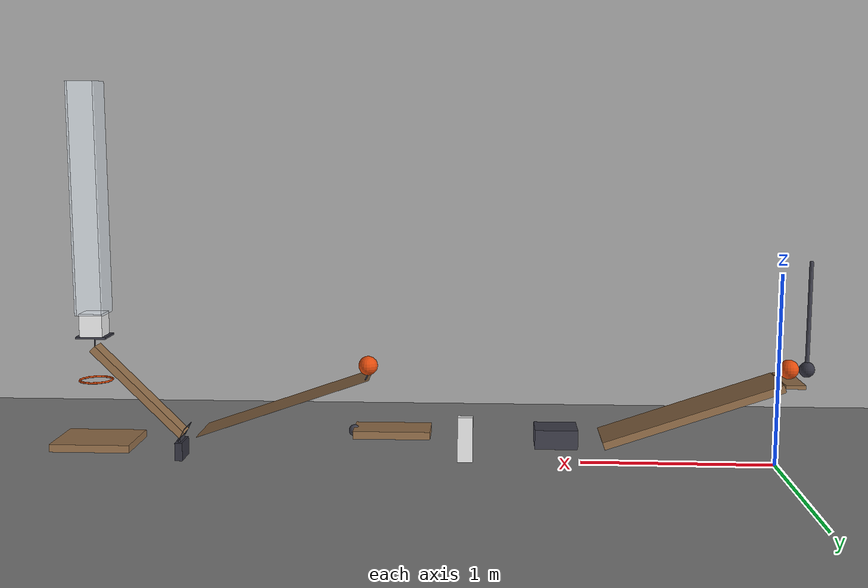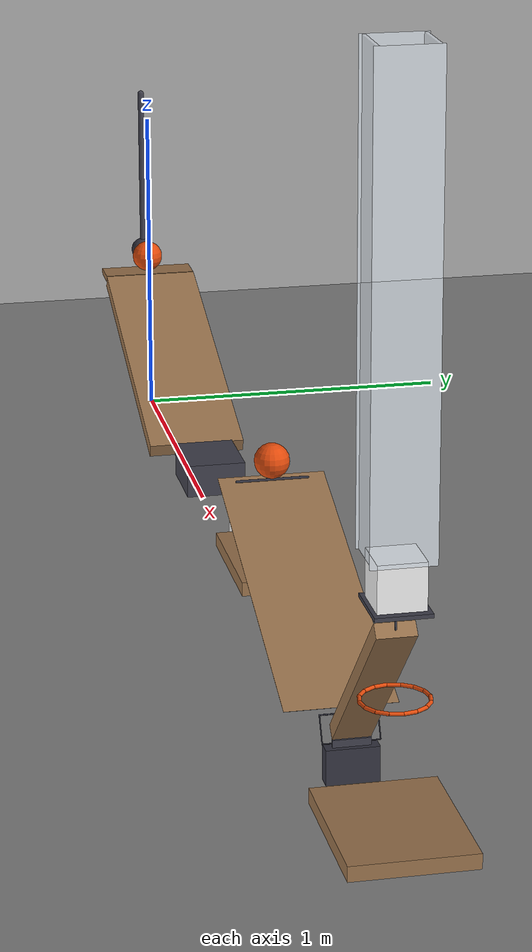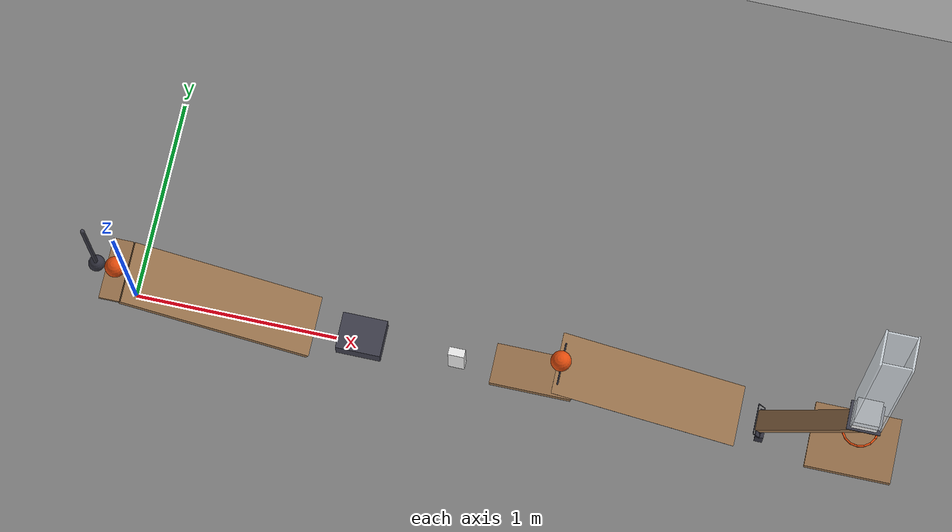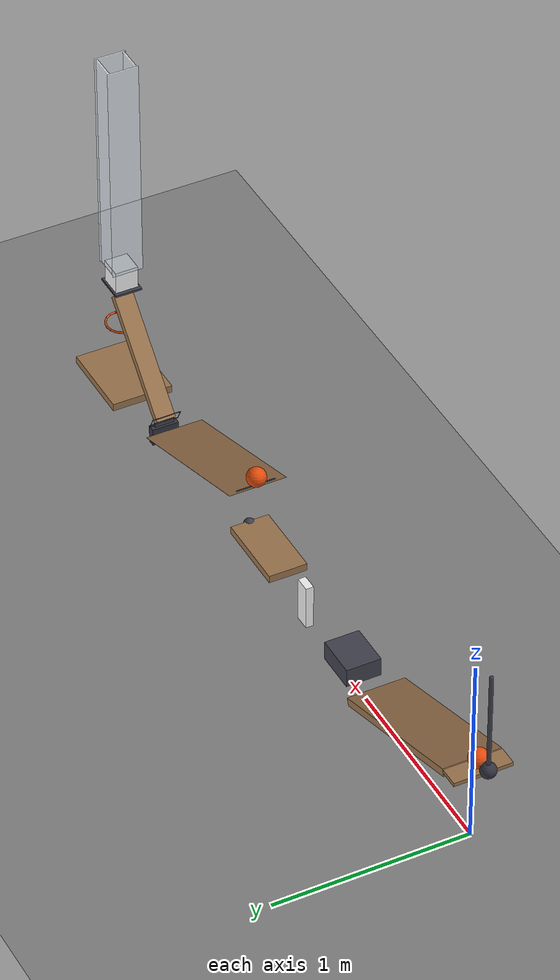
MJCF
<mujoco model="latched_seesaw_chain_revision">
  <compiler angle="radian"/>
  <option timestep="0.002"/>
  <worldbody>
    <geom name="floor" type="plane" size="10 10 0.1" friction="0.68 0.005 0.002"/>
    <body name="ramp1">
      <geom name="ramp1" type="box" pos="0.449121 0 0.285735" size="0.475 0.15 0.02" euler="0 0.331613 0" friction="0.68 0.005 0" solref="0.01 0.690107" rgba="0.6 0.45 0.3 1"/>
    </body>
    <body name="ball1 perch">
      <geom name="ball1 perch" type="box" pos="-0.05 0 0.44929" size="0.05 0.15 0.01" friction="0.68 0.005 0.002" solref="0.01 0.690107" rgba="0.6 0.45 0.3 1"/>
    </body>
    <body name="ball1" pos="-0.05 0 0.50929">
      <freejoint/>
      <geom name="ball1" type="sphere" pos="0 0 0" size="0.05" mass="0.2" condim="6" friction="0.68 0.005 0" solref="0.01 0.690107" rgba="0.9 0.3 0.05 1"/>
    </body>
    <body name="pendulum1" pos="-0.14 0 1.05929">
      <joint name="pendulum_hinge" type="hinge" pos="0 0 0" axis="0 1 0" limited="true" range="-1.22173 0.959931" damping="0.04"/>
      <geom name="pendulum1" type="sphere" pos="0 0 -0.55" size="0.04" mass="0.4" friction="0.68 0.005 0.002" solref="0.01 0.690107" rgba="0.2 0.2 0.25 1"/>
      <geom name="pendulum rod" type="capsule" size="0.01" fromto="0 0 0 0 0 -0.55" mass="0" friction="0.68 0.005 0.002" solref="0.01 0.690107" rgba="0.25 0.25 0.3 1"/>
    </body>
    <body name="cart1" pos="1.13475 0 0.145">
      <joint name="cart_track" type="slide" pos="0 0 0" axis="1 0 0" limited="true" range="0 0.4" damping="0.2"/>
      <geom name="cart1" type="box" pos="0 0 0" size="0.11 0.09 0.05" mass="0.5" friction="0.68 0.005 0.002" solref="0.01 0.690107" rgba="0.25 0.25 0.3 1"/>
    </body>
    <body name="domino1" pos="1.60475 0 0.12">
      <freejoint/>
      <geom name="domino1" type="box" pos="0 0 0" size="0.04 0.02 0.12" mass="0.25" friction="0.68 0.005 0.002" solref="0.01 0.690107" rgba="0.95 0.95 0.95 1"/>
    </body>
    <body name="flap1" pos="1.78475 0 0.16">
      <joint name="flap_hinge" type="hinge" pos="0 0 0" axis="0 1 0" limited="true" range="-1.5708 -0.436332" damping="0.04"/>
      <geom name="flap1" type="box" pos="0.2 0 0" size="0.2 0.1 0.02" mass="0.3" friction="0.68 0.005 0.002" solref="0.01 0.690107" rgba="0.6 0.45 0.3 1"/>
      <geom name="flap striking head" type="sphere" pos="0.4 0 0" size="0.03" mass="0" friction="0.68 0.005 0.002" solref="0.01 0.690107" rgba="0.25 0.25 0.3 1"/>
    </body>
    <body name="ramp2">
      <geom name="ramp2" type="box" pos="2.54388 0 0.304408" size="0.475 0.15 0.00025" euler="0 0.331613 0" friction="0.68 0.005 0" solref="0.01 0.690107" rgba="0.6 0.45 0.3 1"/>
    </body>
    <body name="ball2 retaining lip">
      <geom name="ball2 retaining lip" type="capsule" size="0.004" fromto="2.11611 -0.1 0.452798 2.11611 0.1 0.452798" friction="0.68 0.005 0.002" solref="0.01 0.690107" rgba="0.2 0.2 0.25 1"/>
    </body>
    <body name="ball2" pos="2.11111 0 0.506566">
      <freejoint/>
      <geom name="ball2" type="sphere" pos="0 0 0" size="0.05" mass="0.2" condim="6" friction="0.68 0.005 0" solref="0.01 0.690107" rgba="0.9 0.3 0.05 1"/>
    </body>
    <body name="seesaw1" pos="3.32289 0 0.35981">
      <joint name="seesaw_hinge" type="hinge" pos="0 0 0" axis="0 1 0" limited="true" range="-0.698132 0" stiffness="0.2" springref="-22.5" damping="0.04" armature="0.02"/>
      <geom name="seesaw1" type="box" pos="0 0 0" size="0.325 0.05 0.02" euler="0 -0.785398 0" mass="0.55" friction="0.68 0.005 0.002" solref="0.01 0.690107" rgba="0.6 0.45 0.3 1"/>
      <geom name="launch shoe" type="box" pos="0.22981 0 0.29019" size="0.08 0.07 0.005" mass="0" friction="0.68 0.005 0.002" solref="0.01 0.690107" rgba="0.25 0.25 0.3 1"/>
      <geom name="launch shoe support" type="capsule" size="0.0025" fromto="0.22981 0 0.22981 0.22981 0 0.29019" mass="0" friction="0.68 0.005 0.002" solref="0.01 0.690107" rgba="0.25 0.25 0.3 1"/>
    </body>
    <body name="block1" pos="3.5527 0 0.715">
      <freejoint/>
      <geom name="block1" type="box" pos="0 0 0" size="0.06 0.06 0.06" mass="0.35" friction="0.68 0.005 0.002" solref="0.01 0.690107" rgba="0.95 0.95 0.95 1"/>
    </body>
    <body name="seesaw latch pedestal">
      <geom name="seesaw latch pedestal" type="box" pos="3.10722 0 0.0479289" size="0.02 0.07 0.0479289" friction="0.68 0.005 0.002" solref="0.01 0.690107" rgba="0.2 0.2 0.25 1"/>
    </body>
    <body name="seesaw release latch" pos="3.10722 0 0.105858">
      <freejoint/>
      <geom name="seesaw release latch" type="box" pos="0 0 0" size="0.006 0.05 0.01" mass="0.15" friction="0.68 0.005 0.002" solref="0.01 0.690107" rgba="0.25 0.25 0.3 1"/>
      <geom name="latch crossbar" type="capsule" size="0.0015" fromto="0 -0.075 0 0 0.075 0" mass="0" friction="0.68 0.005 0.002" solref="0.01 0.690107" rgba="0.25 0.25 0.3 1"/>
      <geom name="latch link left" type="capsule" size="0.0015" fromto="0 0.075 0 -0.0341421 0.075 0.0641421" mass="0" friction="0.68 0.005 0.002" solref="0.01 0.690107" rgba="0.25 0.25 0.3 1"/>
      <geom name="latch link right" type="capsule" size="0.0015" fromto="0 -0.075 0 -0.0341421 -0.075 0.0641421" mass="0" friction="0.68 0.005 0.002" solref="0.01 0.690107" rgba="0.25 0.25 0.3 1"/>
      <geom name="release paddle" type="capsule" size="0.002" fromto="-0.0341421 -0.075 0.0641421 -0.0341421 0.075 0.0641421" mass="0" friction="0.68 0.005 0.002" solref="0.01 0.690107" rgba="0.25 0.25 0.3 1"/>
    </body>
    <body name="launch guide near">
      <geom name="launch guide near" type="box" pos="3.4827 0 1.37" size="0.004 0.08 0.6" friction="0.68 0.005 0.002" solref="0.01 0.690107" rgba="0.92 0.95 0.98 0.85"/>
    </body>
    <body name="launch guide far">
      <geom name="launch guide far" type="box" pos="3.6227 0 1.37" size="0.004 0.08 0.6" friction="0.68 0.005 0.002" solref="0.01 0.690107" rgba="0.92 0.95 0.98 0.85"/>
    </body>
    <body name="launch guide left">
      <geom name="launch guide left" type="box" pos="3.5527 0.07 1.37" size="0.066 0.004 0.6" friction="0.68 0.005 0.002" solref="0.01 0.690107" rgba="0.92 0.95 0.98 0.85"/>
    </body>
    <body name="launch guide right">
      <geom name="launch guide right" type="box" pos="3.5527 -0.07 1.37" size="0.066 0.004 0.6" friction="0.68 0.005 0.002" solref="0.01 0.690107" rgba="0.92 0.95 0.98 0.85"/>
    </body>
    <body name="ring1">
      <geom name="ring1_00" type="capsule" size="0.005" fromto="3.6377 0 0.415 3.63123 0.0325281 0.415" friction="0.68 0.005 0.002" solref="0.01 0.690107" rgba="0.9 0.3 0.05 1"/>
      <geom name="ring1_01" type="capsule" size="0.005" fromto="3.63123 0.0325281 0.415 3.6128 0.0601041 0.415" friction="0.68 0.005 0.002" solref="0.01 0.690107" rgba="0.9 0.3 0.05 1"/>
      <geom name="ring1_02" type="capsule" size="0.005" fromto="3.6128 0.0601041 0.415 3.58523 0.0785298 0.415" friction="0.68 0.005 0.002" solref="0.01 0.690107" rgba="0.9 0.3 0.05 1"/>
      <geom name="ring1_03" type="capsule" size="0.005" fromto="3.58523 0.0785298 0.415 3.5527 0.085 0.415" friction="0.68 0.005 0.002" solref="0.01 0.690107" rgba="0.9 0.3 0.05 1"/>
      <geom name="ring1_04" type="capsule" size="0.005" fromto="3.5527 0.085 0.415 3.52017 0.0785298 0.415" friction="0.68 0.005 0.002" solref="0.01 0.690107" rgba="0.9 0.3 0.05 1"/>
      <geom name="ring1_05" type="capsule" size="0.005" fromto="3.52017 0.0785298 0.415 3.49259 0.0601041 0.415" friction="0.68 0.005 0.002" solref="0.01 0.690107" rgba="0.9 0.3 0.05 1"/>
      <geom name="ring1_06" type="capsule" size="0.005" fromto="3.49259 0.0601041 0.415 3.47417 0.0325281 0.415" friction="0.68 0.005 0.002" solref="0.01 0.690107" rgba="0.9 0.3 0.05 1"/>
      <geom name="ring1_07" type="capsule" size="0.005" fromto="3.47417 0.0325281 0.415 3.4677 1.04095e-17 0.415" friction="0.68 0.005 0.002" solref="0.01 0.690107" rgba="0.9 0.3 0.05 1"/>
      <geom name="ring1_08" type="capsule" size="0.005" fromto="3.4677 1.04095e-17 0.415 3.47417 -0.0325281 0.415" friction="0.68 0.005 0.002" solref="0.01 0.690107" rgba="0.9 0.3 0.05 1"/>
      <geom name="ring1_09" type="capsule" size="0.005" fromto="3.47417 -0.0325281 0.415 3.49259 -0.0601041 0.415" friction="0.68 0.005 0.002" solref="0.01 0.690107" rgba="0.9 0.3 0.05 1"/>
      <geom name="ring1_10" type="capsule" size="0.005" fromto="3.49259 -0.0601041 0.415 3.52017 -0.0785298 0.415" friction="0.68 0.005 0.002" solref="0.01 0.690107" rgba="0.9 0.3 0.05 1"/>
      <geom name="ring1_11" type="capsule" size="0.005" fromto="3.52017 -0.0785298 0.415 3.5527 -0.085 0.415" friction="0.68 0.005 0.002" solref="0.01 0.690107" rgba="0.9 0.3 0.05 1"/>
      <geom name="ring1_12" type="capsule" size="0.005" fromto="3.5527 -0.085 0.415 3.58523 -0.0785298 0.415" friction="0.68 0.005 0.002" solref="0.01 0.690107" rgba="0.9 0.3 0.05 1"/>
      <geom name="ring1_13" type="capsule" size="0.005" fromto="3.58523 -0.0785298 0.415 3.6128 -0.0601041 0.415" friction="0.68 0.005 0.002" solref="0.01 0.690107" rgba="0.9 0.3 0.05 1"/>
      <geom name="ring1_14" type="capsule" size="0.005" fromto="3.6128 -0.0601041 0.415 3.63123 -0.0325281 0.415" friction="0.68 0.005 0.002" solref="0.01 0.690107" rgba="0.9 0.3 0.05 1"/>
      <geom name="ring1_15" type="capsule" size="0.005" fromto="3.63123 -0.0325281 0.415 3.6377 -2.0819e-17 0.415" friction="0.68 0.005 0.002" solref="0.01 0.690107" rgba="0.9 0.3 0.05 1"/>
    </body>
    <body name="door1" pos="3.3427 0 0.085">
      <joint name="door_hinge" type="hinge" pos="0 0 0" axis="0 1 0" limited="true" range="-1.13446 0" damping="0.04"/>
      <geom name="door1" type="box" pos="0.21 0 0" size="0.21 0.16 0.02" mass="0.45" friction="0.68 0.005 0.002" solref="0.01 0.690107" rgba="0.6 0.45 0.3 1"/>
    </body>
  </worldbody>
  <keyframe>
    <key name="start" qpos="-0.05 0 0.50929 1 0 0 0 0.959931 0 1.60475 0 0.12 1 0 0 0 -1.5708 2.11111 0 0.506566 1 0 0 0 0 3.5527 0 0.715 1 0 0 0 3.10722 0 0.105858 1 0 0 0 0" qvel="0 0 0 0 0 0 0 0 0 0 0 0 0 0 0 0 0 0 0 0 0 0 0 0 0 0 0 0 0 0 0 0 0 0 0"/>
  </keyframe>
</mujoco>
